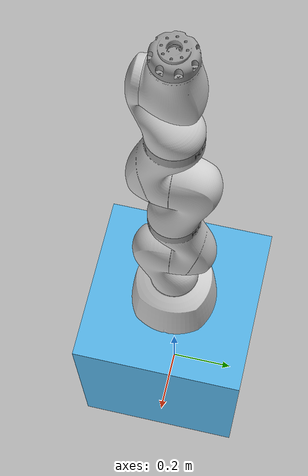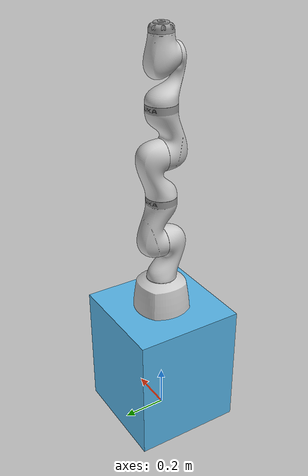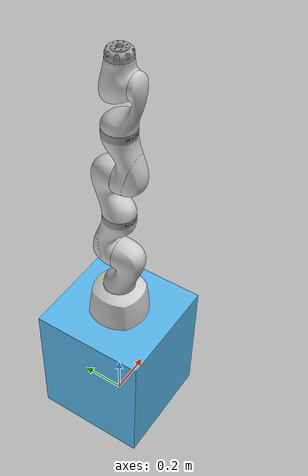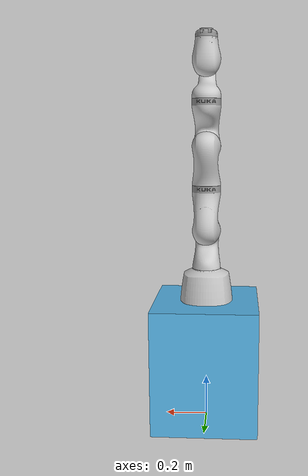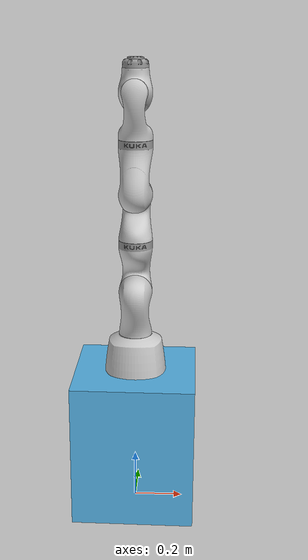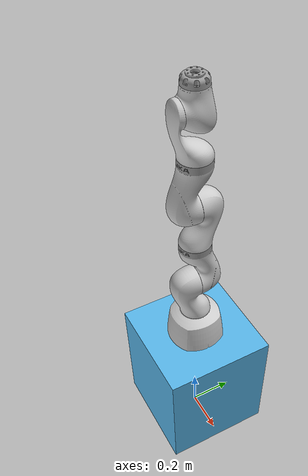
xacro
<?xml version="1.0"?>

<!-- top level -->
<robot name="med7" xmlns:xacro="http://www.ros.org/wiki/xacro">

    <!-- include the lbr med macro -->
    <xacro:include filename="$(find lbr_description)/urdf/med7/med7_description.xacro" />

    <xacro:arg name="robot_name" default="lbr" />
    <xacro:arg name="mode" default="true" />
    <xacro:arg
        name="system_config_path"
        default="$(find lbr_description)/ros2_control/lbr_system_config.yaml" />
    <xacro:arg
        name="initial_joint_positions_path"
        default="$(find lbr_description)/ros2_control/initial_joint_positions.yaml" />
    <xacro:arg
        name="controllers_config_path"
        default="$(find lbr_description)/ros2_control/lbr_controllers.yaml" />

    <!-- KDL requires a link without inertia / Gazebo requires a connection to world link or robot
    will tipple https://github.com/lbr-stack/lbr_fri_ros2_stack/issues/230 -->
    <link name="world" />

    <joint name="joint_name" type="fixed">
        <origin xyz="0 0 0.3" />
        <parent link="world" />
        <child link="mounting_base" />
    </joint>

    <link name="mounting_base">
        <visual>
            <geometry>
                <box size="0.5 0.5 0.6" />
            </geometry>
        </visual>
        <collision>
            <geometry>
                <box size="0.5 0.5 0.6" />
            </geometry>
        </collision>

    </link>

    <joint name="$(arg robot_name)_world_joint" type="fixed">
        <origin xyz="0 0 0.3" />
        <parent link="mounting_base" />
        <child link="$(arg robot_name)_link_0" />
    </joint>

    <!-- med -->
    <xacro:med7
        robot_name="$(arg robot_name)"
        mode="$(arg mode)"
        system_config_path="$(arg system_config_path)"
        initial_joint_positions_path="$(arg initial_joint_positions_path)"
        controllers_config_path="$(arg controllers_config_path)" />
</robot>

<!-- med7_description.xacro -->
<robot xmlns:xacro="http://www.ros.org/wiki/xacro">
    <!-- robot as extracted via https://github.com/syuntoku14/fusion2urdf -->
    <xacro:macro name="med7"
        params="robot_name:=^|lbr mode:=^|mock system_config_path:=^|'$(find lbr_description)/ros2_control/lbr_system_config.yaml' initial_joint_positions_path:=^|'$(find lbr_description)/ros2_control/initial_joint_positions.yaml' controllers_config_path:=^|'$(find lbr_description)/ros2_control/lbr_controllers.yaml'">

        <!-- includes -->
        <xacro:include filename="$(find lbr_description)/gazebo/lbr_gazebo.xacro" />
        <xacro:include filename="$(find lbr_description)/ros2_control/lbr_system_interface.xacro" />

        <!-- joint limits via yaml -->
        <xacro:property name="joint_limits_path"
            value="$(find lbr_description)/urdf/med7/joint_limits.yaml" />
        <xacro:property name="joint_limits" value="${xacro.load_yaml(joint_limits_path)}" />

        <!-- constants -->
        <xacro:property name="PI" value="3.1415926535897931" />
        <xacro:property name="joint_damping" value="10.0" />
        <xacro:property name="joint_friction" value="0.1" />

        <!-- macros for gazebo / mock / hardware -->
        <xacro:lbr_gazebo
            robot_name="${robot_name}"
            controllers_config_path="${controllers_config_path}" />
        <xacro:lbr_system_interface
            robot_name="${robot_name}"
            mode="${mode}"
            joint_limits="${joint_limits}"
            system_config_path="${system_config_path}"
            initial_joint_positions_path="${initial_joint_positions_path}" />

        <!-- properties -->
        <link name="${robot_name}_link_0">
            <inertial>
                <origin rpy="0 0 0" xyz="-0.001896 0.0 0.076263" />
                <mass value="7.143112" />
                <inertia ixx="0.038694" ixy="0.0" ixz="-0.000686" iyy="0.039461" iyz="0.0"
                    izz="0.054387" />
            </inertial>
            <visual>
                <origin rpy="0 0 0" xyz="0 0 0" />
                <geometry>
                    <mesh filename="package://lbr_description/meshes/med7/visual/link_0.dae" />
                </geometry>
            </visual>
            <collision>
                <origin rpy="0 0 0" xyz="0 0 0" />
                <geometry>
                    <mesh filename="package://lbr_description/meshes/med7/collision/link_0.stl" />
                </geometry>
            </collision>
        </link>

        <joint name="${robot_name}_A1" type="revolute">
            <origin rpy="0 0 0" xyz="0.0 0.0 0.1475" />
            <parent link="${robot_name}_link_0" />
            <child link="${robot_name}_link_1" />
            <axis xyz="0.0 0.0 1.0" />
            <limit
                effort="${joint_limits['A1']['effort']}"
                lower="${joint_limits['A1']['lower'] * PI / 180}"
                upper="${joint_limits['A1']['upper'] * PI / 180}"
                velocity="${joint_limits['A1']['velocity'] * PI / 180}" />
            <dynamics damping="${joint_damping}" friction="${joint_friction}" />
        </joint>

        <link name="${robot_name}_link_1">
            <inertial>
                <origin rpy="0 0 0" xyz="0.0 -0.034819  0.123299" />
                <mass value="3.271499" />
                <inertia ixx="0.020611" ixy="0.0" ixz="0.0" iyy="0.019667" iyz="0.00366"
                    izz="0.00729" />
            </inertial>
            <visual>
                <origin rpy="0 0 0" xyz="0.0 0.0 -0.1475" />
                <geometry>
                    <mesh filename="package://lbr_description/meshes/med7/visual/link_1.dae" />
                </geometry>
            </visual>
            <collision>
                <origin rpy="0 0 0" xyz="0.0 0.0 -0.1475" />
                <geometry>
                    <mesh filename="package://lbr_description/meshes/med7/collision/link_1.stl" />
                </geometry>
            </collision>
        </link>

        <joint name="${robot_name}_A2" type="revolute">
            <origin rpy="0 0 0" xyz="0.0 -0.0105 0.1925" />
            <parent link="${robot_name}_link_1" />
            <child link="${robot_name}_link_2" />
            <axis xyz="0.0 1.0 0.0" />
            <limit
                effort="${joint_limits['A2']['effort']}"
                lower="${joint_limits['A2']['lower'] * PI / 180}"
                upper="${joint_limits['A2']['upper'] * PI / 180}"
                velocity="${joint_limits['A2']['velocity'] * PI / 180}" />
            <dynamics damping="${joint_damping}" friction="${joint_friction}" />
        </joint>

        <link name="${robot_name}_link_2">
            <inertial>
                <origin rpy="0 0 0" xyz="0.0 0.039793 0.086944" />
                <mass value="3.886413" />
                <inertia ixx="0.030552" ixy="0.0" ixz="0.0" iyy="0.028995" iyz="0.005676"
                    izz="0.009317" />
            </inertial>
            <visual>
                <origin rpy="0 0 0" xyz="0.0 0.0105 -0.34" />
                <geometry>
                    <mesh filename="package://lbr_description/meshes/med7/visual/link_2.dae" />
                </geometry>
            </visual>
            <collision>
                <origin rpy="0 0 0" xyz="0.0 0.0105 -0.34" />
                <geometry>
                    <mesh filename="package://lbr_description/meshes/med7/collision/link_2.stl" />
                </geometry>
            </collision>
        </link>

        <joint name="${robot_name}_A3" type="revolute">
            <origin rpy="0 0 0" xyz="0.0 0.0105 0.2075" />
            <parent link="${robot_name}_link_2" />
            <child link="${robot_name}_link_3" />
            <axis xyz="0.0 0.0 1.0" />
            <limit
                effort="${joint_limits['A3']['effort']}"
                lower="${joint_limits['A3']['lower'] * PI / 180}"
                upper="${joint_limits['A3']['upper'] * PI / 180}"
                velocity="${joint_limits['A3']['velocity'] * PI / 180}" />
            <dynamics damping="${joint_damping}" friction="${joint_friction}" />
        </joint>

        <link name="${robot_name}_link_3">
            <inertial>
                <origin rpy="0 0 0" xyz="0.0 0.034819  0.123299" />
                <mass value="3.271499" />
                <inertia ixx="0.020611" ixy="0.0" ixz="0.0" iyy="0.019667" iyz="-0.00366"
                    izz="0.00729" />
            </inertial>
            <visual>
                <origin rpy="0 0 0" xyz="0.0 0.0 -0.5475" />
                <geometry>
                    <mesh filename="package://lbr_description/meshes/med7/visual/link_3.dae" />
                </geometry>
            </visual>
            <collision>
                <origin rpy="0 0 0" xyz="0.0 0.0 -0.5475" />
                <geometry>
                    <mesh filename="package://lbr_description/meshes/med7/collision/link_3.stl" />
                </geometry>
            </collision>
        </link>

        <joint name="${robot_name}_A4" type="revolute">
            <origin rpy="0 0 0" xyz="0.0 0.0105 0.1925" />
            <parent link="${robot_name}_link_3" />
            <child link="${robot_name}_link_4" />
            <axis xyz="0.0 -1.0 0.0" />
            <limit
                effort="${joint_limits['A4']['effort']}"
                lower="${joint_limits['A4']['lower'] * PI / 180}"
                upper="${joint_limits['A4']['upper'] * PI / 180}"
                velocity="${joint_limits['A4']['velocity'] * PI / 180}" />
            <dynamics damping="${joint_damping}" friction="${joint_friction}" />
        </joint>

        <link name="${robot_name}_link_4">
            <inertial>
                <origin rpy="0 0 0" xyz="0.0 -0.039793  0.086944" />
                <mass value="3.886411" />
                <inertia ixx="0.030547" ixy="0.0" ixz="0.0" iyy="0.028993" iyz="-0.005676"
                    izz="0.009313" />
            </inertial>
            <visual>
                <origin rpy="0 0 0" xyz="0.0 -0.0105 -0.74" />
                <geometry>
                    <mesh filename="package://lbr_description/meshes/med7/visual/link_4.dae" />
                </geometry>
            </visual>
            <collision>
                <origin rpy="0 0 0" xyz="0.0 -0.0105 -0.74" />
                <geometry>
                    <mesh filename="package://lbr_description/meshes/med7/collision/link_4.stl" />
                </geometry>
            </collision>
        </link>

        <joint name="${robot_name}_A5" type="revolute">
            <origin rpy="0 0 0" xyz="0.0 -0.0105 0.2075" />
            <parent link="${robot_name}_link_4" />
            <child link="${robot_name}_link_5" />
            <axis xyz="0.0 0.0 1.0" />
            <limit
                effort="${joint_limits['A5']['effort']}"
                lower="${joint_limits['A5']['lower'] * PI / 180}"
                upper="${joint_limits['A5']['upper'] * PI / 180}"
                velocity="${joint_limits['A5']['velocity'] * PI / 180}" />
            <dynamics damping="${joint_damping}" friction="${joint_friction}" />
        </joint>

        <link name="${robot_name}_link_5">
            <inertial>
                <origin rpy="0 0 0" xyz="0.0 -0.029824 0.076267" />
                <mass value="1.474048" />
                <inertia ixx="0.008179" ixy="0.0" ixz="0.0" iyy="0.006879" iyz="0.002704"
                    izz="0.003709" />
            </inertial>
            <visual>
                <origin rpy="0 0 0" xyz="0.0 0.0 -0.9475" />
                <geometry>
                    <mesh filename="package://lbr_description/meshes/med7/visual/link_5.dae" />
                </geometry>
            </visual>
            <collision>
                <origin rpy="0 0 0" xyz="0.0 0.0 -0.9475" />
                <geometry>
                    <mesh filename="package://lbr_description/meshes/med7/collision/link_5.stl" />
                </geometry>
            </collision>
        </link>

        <joint name="${robot_name}_A6" type="revolute">
            <origin rpy="0 0 0" xyz="0.0 -0.0707 0.1925" />
            <parent link="${robot_name}_link_5" />
            <child link="${robot_name}_link_6" />
            <axis xyz="0.0 1.0 0.0" />
            <limit
                effort="${joint_limits['A6']['effort']}"
                lower="${joint_limits['A6']['lower'] * PI / 180}"
                upper="${joint_limits['A6']['upper'] * PI / 180}"
                velocity="${joint_limits['A6']['velocity'] * PI / 180}" />
            <dynamics damping="${joint_damping}" friction="${joint_friction}" />
        </joint>

        <link name="${robot_name}_link_6">
            <inertial>
                <origin rpy="0 0 0" xyz="-1.000e-06 7.102e-02 4.953e-03" />
                <mass value="2.316911" />
                <inertia ixx="0.006813" ixy="0.0" ixz="0.0" iyy="0.006559" iyz="0.0003"
                    izz="0.004462" />
            </inertial>
            <visual>
                <origin rpy="0 0 0" xyz="0.0 0.0707 -1.14" />
                <geometry>
                    <mesh filename="package://lbr_description/meshes/med7/visual/link_6.dae" />
                </geometry>
            </visual>
            <collision>
                <origin rpy="0 0 0" xyz="0.0 0.0707 -1.14" />
                <geometry>
                    <mesh filename="package://lbr_description/meshes/med7/collision/link_6.stl" />
                </geometry>
            </collision>
        </link>

        <joint name="${robot_name}_A7" type="revolute">
            <origin rpy="0 0 0" xyz="0.0 0.0707 0.091" />
            <parent link="${robot_name}_link_6" />
            <child link="${robot_name}_link_7" />
            <axis xyz="0.0 0.0 1.0" />
            <limit
                effort="${joint_limits['A7']['effort']}"
                lower="${joint_limits['A7']['lower'] * PI / 180}"
                upper="${joint_limits['A7']['upper'] * PI / 180}"
                velocity="${joint_limits['A7']['velocity'] * PI / 180}" />
            <dynamics damping="${joint_damping}" friction="${joint_friction}" />
        </joint>

        <link name="${robot_name}_link_7">
            <inertial>
                <origin rpy="0 0 0" xyz="3.0000e-06 -2.0000e-06 1.3782e-02" />
                <mass value="0.250108" />
                <inertia ixx="0.000165" ixy="0.0" ixz="0.0" iyy="0.000165" iyz="0.0" izz="0.000288" />
            </inertial>
            <visual>
                <origin rpy="0 0 0" xyz="0.0 0.0 -1.231" />
                <geometry>
                    <mesh filename="package://lbr_description/meshes/med7/visual/link_7.dae" />
                </geometry>
            </visual>
            <collision>
                <origin rpy="0 0 0" xyz="0.0 0.0 -1.231" />
                <geometry>
                    <mesh filename="package://lbr_description/meshes/med7/collision/link_7.stl" />
                </geometry>
            </collision>
        </link>

        <joint name="${robot_name}_joint_ee" type="fixed">
            <parent link="${robot_name}_link_7" />
            <child link="${robot_name}_link_ee" />
            <origin xyz="0 0 0.035" rpy="0 0 0" />
        </joint>

        <link name="${robot_name}_link_ee">
        </link>
    </xacro:macro>
</robot>
